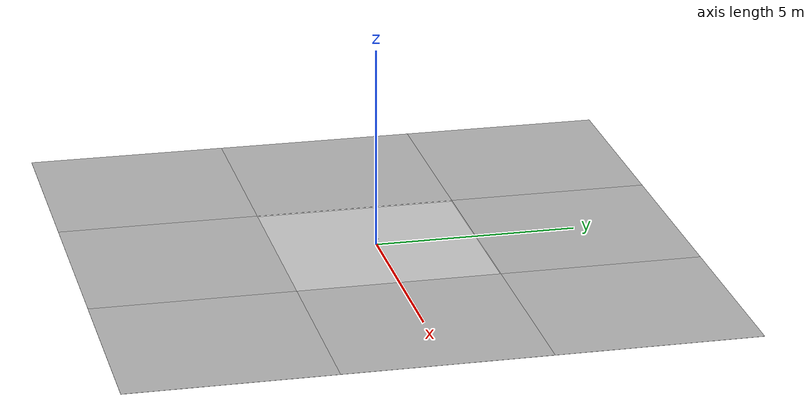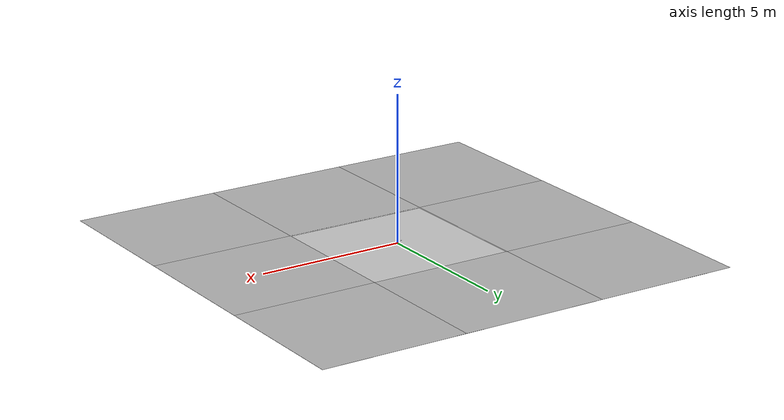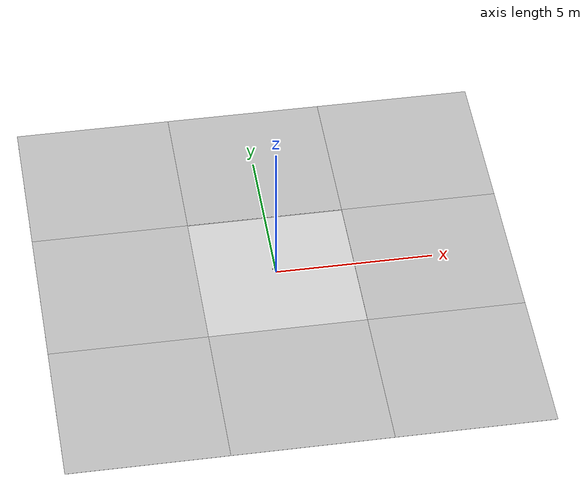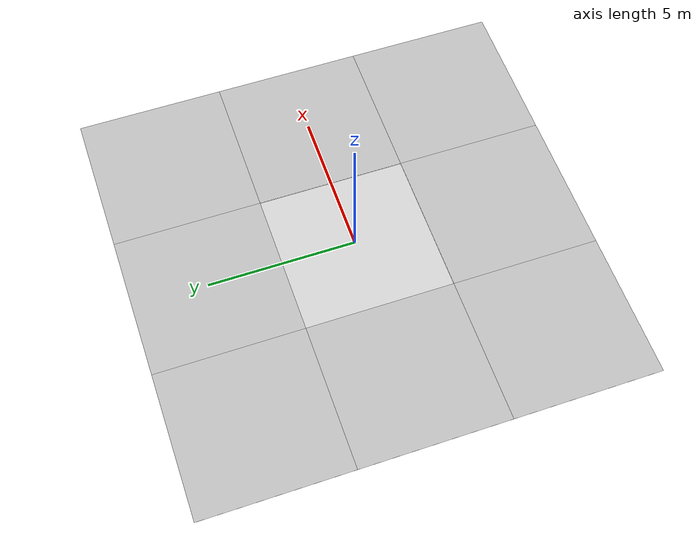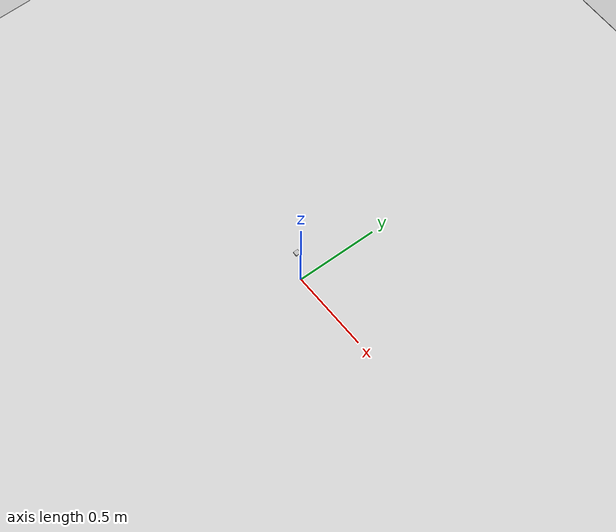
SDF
<?xml version="1.0"?>
<sdf version='1.5'>
  <model name='plane_catapult'>
    <include>
      <uri>model://plane</uri>
    </include>

    <include>
      <uri>model://fpv_cam</uri>
      <pose>-0.15 0 0.15 0 1.57 0</pose>
    </include>

    <joint name="fpv_cam_joint" type="fixed">
      <child>fpv_cam::link</child>
      <parent>plane::base_link</parent>
      <axis>
        <xyz>-0.15 0 0</xyz>
        <limit>
          <upper>0</upper>
          <lower>0</lower>
        </limit>
      </axis>
    </joint>

    <!--fixedwing catapult-->
    <plugin name='catapult_plugin' filename='libgazebo_catapult_plugin.so'>
      <robotNamespace/>
      <link_name>plane::base_link</link_name>
      <commandSubTopic>/gazebo/command/motor_speed</commandSubTopic>
      <motorNumber>4</motorNumber>
      <force>50.0</force>
      <duration>0.5</duration>
    </plugin>
  </model>
</sdf>

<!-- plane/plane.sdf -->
<sdf version='1.5'>
  <model name='plane_catapult'>
    <include>
      <uri>model://plane</uri>
    </include>

    <!--fixedwing catapult-->
    <plugin name='catapult_plugin' filename='libgazebo_catapult_plugin.so'>
      <robotNamespace/>
      <link_name>plane::base_link</link_name>
      <commandSubTopic>/gazebo/command/motor_speed</commandSubTopic>
      <motorNumber>4</motorNumber>
      <force>50.0</force>
      <duration>0.5</duration>
    </plugin>
  </model>
</sdf>

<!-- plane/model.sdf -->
<sdf version='1.4'>
    <model name='plane'>
        <static>true</static>
        <link name='link'>

            <collision name='collision'>
                <geometry>
                    <plane>
                        <normal>0 0 1</normal>
                        <size>15 15</size>
                    </plane>
                </geometry>
                <surface>
                    <friction>
                        <ode>
                            <mu>100</mu>
                            <mu2>50</mu2>
                        </ode>
                    </friction>
                </surface>
            </collision>

            <visual name='visual_0'>
                <pose>0 0 0 0 0 0</pose>
                <cast_shadows>false</cast_shadows>
                <geometry>
                    <plane>
                        <normal>0 0 1</normal>
                        <size>5 5</size>
                    </plane>
                </geometry>
                <material>
                    <script>
                        <uri>model://plane/materials/scripts</uri>
                        <uri>model://plane/materials/textures</uri>
                        <name>vrc/pavement</name>
                    </script>
                </material>
            </visual>

            <visual name='visual_1'>
                <pose>0 5 0 0 0 0</pose>
                <cast_shadows>false</cast_shadows>
                <geometry>
                    <plane>
                        <normal>0 0 1</normal>
                        <size>5 5</size>
                    </plane>
                </geometry>
                <material>
                    <script>
                        <uri>model://plane/materials/scripts</uri>
                        <uri>model://plane/materials/textures</uri>
                        <name>vrc/pavement</name>
                    </script>
                </material>
            </visual>

            <visual name='visual_2'>
                <pose>0 -5 0 0 0 0</pose>
                <cast_shadows>false</cast_shadows>
                <geometry>
                    <plane>
                        <normal>0 0 1</normal>
                        <size>5 5</size>
                    </plane>
                </geometry>
                <material>
                    <script>
                        <uri>model://plane/materials/scripts</uri>
                        <uri>model://plane/materials/textures</uri>
                        <name>vrc/pavement</name>
                    </script>
                </material>
            </visual>

            <visual name='visual_3'>
                <pose>-5 -5 0 0 0 0</pose>
                <cast_shadows>false</cast_shadows>
                <geometry>
                    <plane>
                        <normal>0 0 1</normal>
                        <size>5 5</size>
                    </plane>
                </geometry>
                <material>
                    <script>
                        <uri>model://plane/materials/scripts</uri>
                        <uri>model://plane/materials/textures</uri>
                        <name>vrc/pavement</name>
                    </script>
                </material>
            </visual>

            <visual name='visual_4'>
                <pose>-5 0 0 0 0 0</pose>
                <cast_shadows>false</cast_shadows>
                <geometry>
                    <plane>
                        <normal>0 0 1</normal>
                        <size>5 5</size>
                    </plane>
                </geometry>
                <material>
                    <script>
                        <uri>model://plane/materials/scripts</uri>
                        <uri>model://plane/materials/textures</uri>
                        <name>vrc/pavement</name>
                    </script>
                </material>
            </visual>

            <visual name='visual_5'>
                <pose>-5 5 0 0 0 0</pose>
                <cast_shadows>false</cast_shadows>
                <geometry>
                    <plane>
                        <normal>0 0 1</normal>
                        <size>5 5</size>
                    </plane>
                </geometry>
                <material>
                    <script>
                        <uri>model://plane/materials/scripts</uri>
                        <uri>model://plane/materials/textures</uri>
                        <name>vrc/pavement</name>
                    </script>
                </material>
            </visual>

            <visual name='visual_6'>
                <pose>5 -5 0 0 0 0</pose>
                <cast_shadows>false</cast_shadows>
                <geometry>
                    <plane>
                        <normal>0 0 1</normal>
                        <size>5 5</size>
                    </plane>
                </geometry>
                <material>
                    <script>
                        <uri>model://plane/materials/scripts</uri>
                        <uri>model://plane/materials/textures</uri>
                        <name>vrc/pavement</name>
                    </script>
                </material>
            </visual>

            <visual name='visual_7'>
                <pose>5 0 0 0 0 0</pose>
                <cast_shadows>false</cast_shadows>
                <geometry>
                    <plane>
                        <normal>0 0 1</normal>
                        <size>5 5</size>
                    </plane>
                </geometry>
                <material>
                    <script>
                        <uri>model://plane/materials/scripts</uri>
                        <uri>model://plane/materials/textures</uri>
                        <name>vrc/pavement</name>
                    </script>
                </material>
            </visual>

            <visual name='visual_8'>
                <pose>5 5 0 0 0 0</pose>
                <cast_shadows>false</cast_shadows>
                <geometry>
                    <plane>
                        <normal>0 0 1</normal>
                        <size>5 5</size>
                    </plane>
                </geometry>
                <material>
                    <script>
                        <uri>model://plane/materials/scripts</uri>
                        <uri>model://plane/materials/textures</uri>
                        <name>vrc/pavement</name>
                    </script>
                </material>
            </visual>

        </link>
    </model>
</sdf>

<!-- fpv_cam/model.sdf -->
<sdf version='1.9'>
    <model name="fpv_cam">
        <pose>4 0 1.0 0 0.0 3.14</pose>
        <link name="fpv_cam/base_link">
        <pose>0.05 0.05 0.05 0 0 0</pose>
        <inertial>
            <mass>0.1</mass>
            <inertia>
            <ixx>0.000166667</ixx>
            <iyy>0.000166667</iyy>
            <izz>0.000166667</izz>
            </inertia>
        </inertial>
        <collision name="collision">
            <geometry>
            <box>
                <size>0.1 0.1 0.1</size>
            </box>
            </geometry>
        </collision>
        <visual name="visual">
            <geometry>
            <box>
                <size>0.01 0.03 0.028</size>
            </box>
            </geometry>
        </visual>
        <sensor name="camera" type="camera">
            <camera>
            <horizontal_fov>1.745</horizontal_fov>
            <image>
                <width>1280</width>
                <height>720</height>
            </image>
            <clip>
                <near>0.1</near>
                <far>1000</far>
            </clip>
            </camera>
            <always_on>1</always_on>
            <update_rate>30</update_rate>
            <visualize>true</visualize>
            <topic>camera</topic>
        </sensor>
        </link>
    </model>
</sdf>
